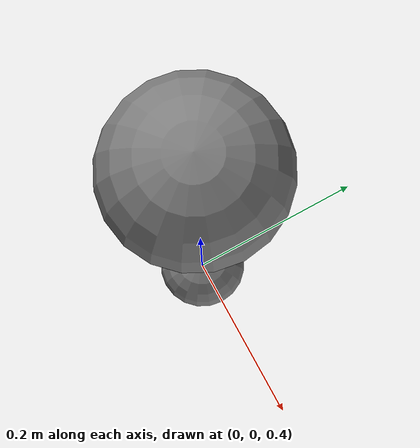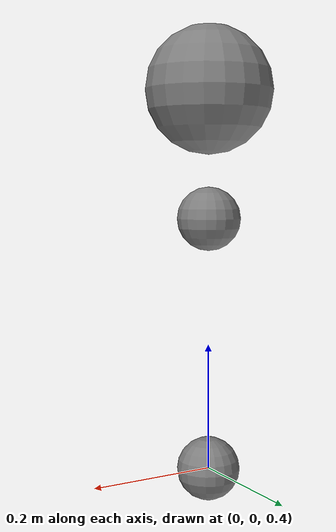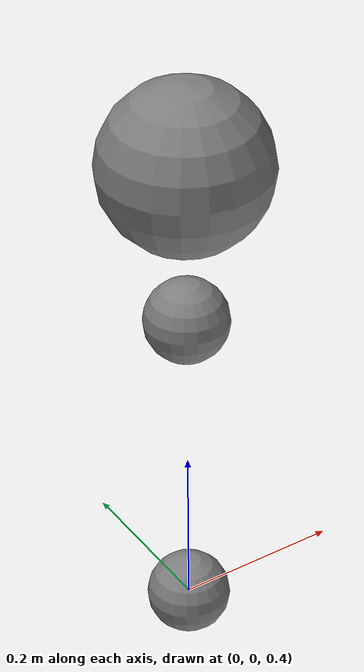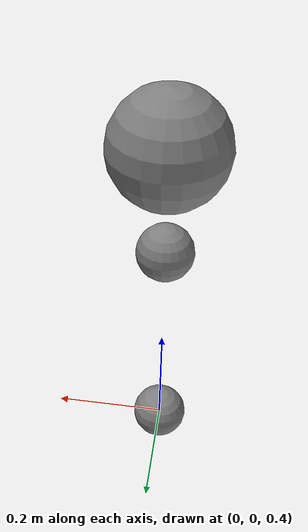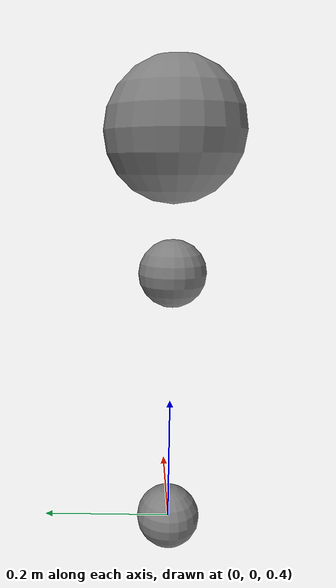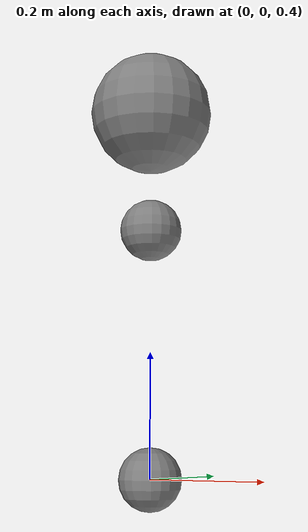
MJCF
<!-- Example structure for a biped in MuJoCo's XML -->
<mujoco>
    <worldbody>
        <body name="torso" pos="0 0 1">
            <geom shape="box" size="0.1 0.1 0.1" />
            <body name="right_leg" pos="0 0 -0.2">
                <joint name="right_hip" type="hinge" axis="0 1 0" />
                <geom shape="box" size="0.05 0.05 0.2" />
                <body name="right_lower_leg" pos="0 0 -0.4">
                    <joint name="right_knee" type="hinge" axis="0 1 0" />
                    <geom shape="box" size="0.05 0.05 0.2" />
                </body>
            </body>
            <body name="left_leg" pos="0 0 -0.2">
                <!-- Similar structure for the left leg -->
            </body>
        </body>
    </worldbody>
    <!-- Define actuators and sensors as needed -->
</mujoco>
